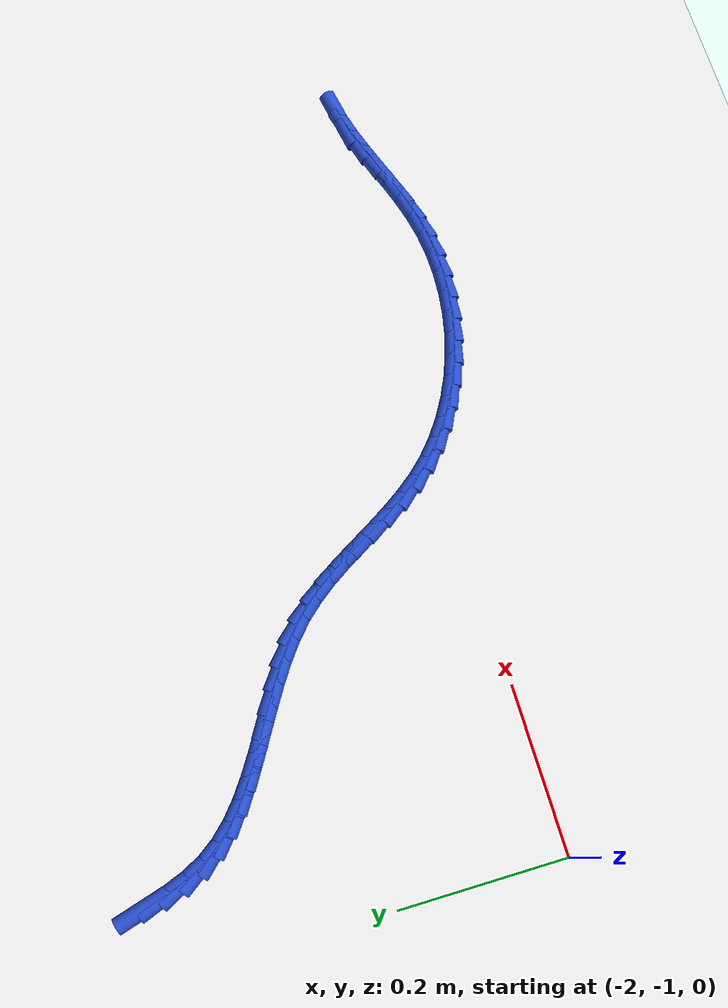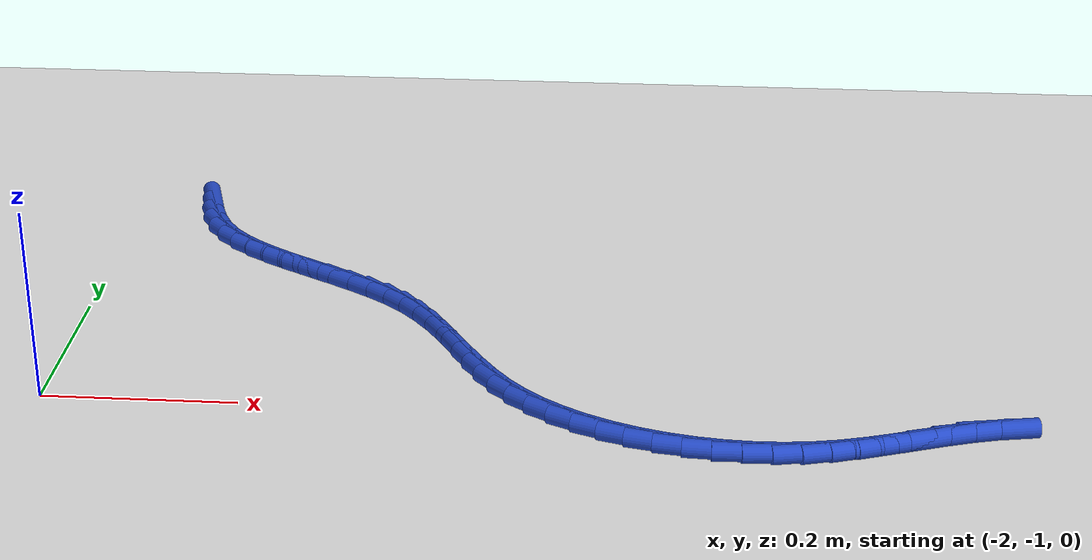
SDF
<sdf version="1.6">
 <world name="default">
  <model name="ground_plane">
   <static>1</static>
   <link name="link">
    <collision name="collision">
     <geometry><plane><normal>0 0 1</normal><size>100 100</size></plane></geometry>
     <surface><friction><ode><mu>100</mu><mu2>50</mu2></ode></friction></surface>
    </collision>
    <visual name="visual">
     <cast_shadows>0</cast_shadows>
     <geometry><plane><normal>0 0 1</normal><size>100 100</size></plane></geometry>
     <material>
      <script><uri>file://media/materials/scripts/gazebo.material</uri><name>Gazebo/WhiteGlow</name></script>
     </material>
    </visual>
   </link>
  </model>
  <model name="line">
   <link name="link_146">
    <pose>-1.916524852934503 -0.5394913245803629 0.01 0 1.57 -1.2942895132993408</pose>
    <collision name="collision">
     <geometry><cylinder><radius>0.01</radius><length>0.08</length></cylinder></geometry>
    </collision>
    <visual name="visual">
     <material>
      <script><name>Gazebo/Blue</name><uri>file://media/materials/scripts/gazebo.material</uri></script>
     </material>
     <geometry><cylinder><radius>0.01</radius><length>0.08</length></cylinder></geometry>
    </visual>
   </link>
   <link name="link_147">
    <pose>-1.909293522142798 -0.564973848998647 0.01 0 1.57 -1.217813978859951</pose>
    <collision name="collision">
     <geometry><cylinder><radius>0.01</radius><length>0.08</length></cylinder></geometry>
    </collision>
    <visual name="visual">
     <material>
      <script><name>Gazebo/Blue</name><uri>file://media/materials/scripts/gazebo.material</uri></script>
     </material>
     <geometry><cylinder><radius>0.01</radius><length>0.08</length></cylinder></geometry>
    </visual>
   </link>
   <link name="link_148">
    <pose>-1.9003900592793597 -0.5891409900284101 0.01 0 1.57 -1.1029184917757635</pose>
    <collision name="collision">
     <geometry><cylinder><radius>0.01</radius><length>0.08</length></cylinder></geometry>
    </collision>
    <visual name="visual">
     <material>
      <script><name>Gazebo/Blue</name><uri>file://media/materials/scripts/gazebo.material</uri></script>
     </material>
     <geometry><cylinder><radius>0.01</radius><length>0.08</length></cylinder></geometry>
    </visual>
   </link>
   <link name="link_149">
    <pose>-1.8890611035679736 -0.6115612901170854 0.01 0 1.57 -0.9541068541620445</pose>
    <collision name="collision">
     <geometry><cylinder><radius>0.01</radius><length>0.08</length></cylinder></geometry>
    </collision>
    <visual name="visual">
     <material>
      <script><name>Gazebo/Blue</name><uri>file://media/materials/scripts/gazebo.material</uri></script>
     </material>
     <geometry><cylinder><radius>0.01</radius><length>0.08</length></cylinder></geometry>
    </visual>
   </link>
   <link name="link_150">
    <pose>-1.8746618586096495 -0.6318727277922376 0.01 0 1.57 -0.8147331824166854</pose>
    <collision name="collision">
     <geometry><cylinder><radius>0.01</radius><length>0.08</length></cylinder></geometry>
    </collision>
    <visual name="visual">
     <material>
      <script><name>Gazebo/Blue</name><uri>file://media/materials/scripts/gazebo.material</uri></script>
     </material>
     <geometry><cylinder><radius>0.01</radius><length>0.08</length></cylinder></geometry>
    </visual>
   </link>
   <link name="link_151">
    <pose>-1.8573527932600646 -0.6502283166618286 0.01 0 1.57 -0.70574313979676</pose>
    <collision name="collision">
     <geometry><cylinder><radius>0.01</radius><length>0.08</length></cylinder></geometry>
    </collision>
    <visual name="visual">
     <material>
      <script><name>Gazebo/Blue</name><uri>file://media/materials/scripts/gazebo.material</uri></script>
     </material>
     <geometry><cylinder><radius>0.01</radius><length>0.08</length></cylinder></geometry>
    </visual>
   </link>
   <link name="link_152">
    <pose>-1.837656439174529 -0.6670126400458308 0.01 0 1.57 -0.6263406899594469</pose>
    <collision name="collision">
     <geometry><cylinder><radius>0.01</radius><length>0.08</length></cylinder></geometry>
    </collision>
    <visual name="visual">
     <material>
      <script><name>Gazebo/Blue</name><uri>file://media/materials/scripts/gazebo.material</uri></script>
     </material>
     <geometry><cylinder><radius>0.01</radius><length>0.08</length></cylinder></geometry>
    </visual>
   </link>
   <link name="link_153">
    <pose>-1.816097060436525 -0.6826113892982199 0.01 0 1.57 -0.5737635765131239</pose>
    <collision name="collision">
     <geometry><cylinder><radius>0.01</radius><length>0.08</length></cylinder></geometry>
    </collision>
    <visual name="visual">
     <material>
      <script><name>Gazebo/Blue</name><uri>file://media/materials/scripts/gazebo.material</uri></script>
     </material>
     <geometry><cylinder><radius>0.01</radius><length>0.08</length></cylinder></geometry>
    </visual>
   </link>
   <link name="link_154">
    <pose>-1.7931989211295336 -0.6974102557729703 0.01 0 1.57 -0.5452765079445525</pose>
    <collision name="collision">
     <geometry><cylinder><radius>0.01</radius><length>0.08</length></cylinder></geometry>
    </collision>
    <visual name="visual">
     <material>
      <script><name>Gazebo/Blue</name><uri>file://media/materials/scripts/gazebo.material</uri></script>
     </material>
     <geometry><cylinder><radius>0.01</radius><length>0.08</length></cylinder></geometry>
    </visual>
   </link>
   <link name="link_155">
    <pose>-1.7694862853370366 -0.7117949308240576 0.01 0 1.57 -0.539023096502067</pose>
    <collision name="collision">
     <geometry><cylinder><radius>0.01</radius><length>0.08</length></cylinder></geometry>
    </collision>
    <visual name="visual">
     <material>
      <script><name>Gazebo/Blue</name><uri>file://media/materials/scripts/gazebo.material</uri></script>
     </material>
     <geometry><cylinder><radius>0.01</radius><length>0.08</length></cylinder></geometry>
    </visual>
   </link>
   <link name="link_156">
    <pose>-1.7454834171425162 -0.7261511058054565 0.01 0 1.57 -0.5542869534823142</pose>
    <collision name="collision">
     <geometry><cylinder><radius>0.01</radius><length>0.08</length></cylinder></geometry>
    </collision>
    <visual name="visual">
     <material>
      <script><name>Gazebo/Blue</name><uri>file://media/materials/scripts/gazebo.material</uri></script>
     </material>
     <geometry><cylinder><radius>0.01</radius><length>0.08</length></cylinder></geometry>
    </visual>
   </link>
   <link name="link_157">
    <pose>-1.7217145806294536 -0.740864472071142 0.01 0 1.57 -0.5914811855102141</pose>
    <collision name="collision">
     <geometry><cylinder><radius>0.01</radius><length>0.08</length></cylinder></geometry>
    </collision>
    <visual name="visual">
     <material>
      <script><name>Gazebo/Blue</name><uri>file://media/materials/scripts/gazebo.material</uri></script>
     </material>
     <geometry><cylinder><radius>0.01</radius><length>0.08</length></cylinder></geometry>
    </visual>
   </link>
   <link name="link_158">
    <pose>-1.6987040398813313 -0.7563207209750898 0.01 0 1.57 -0.65195469672039</pose>
    <collision name="collision">
     <geometry><cylinder><radius>0.01</radius><length>0.08</length></cylinder></geometry>
    </collision>
    <visual name="visual">
     <material>
      <script><name>Gazebo/Blue</name><uri>file://media/materials/scripts/gazebo.material</uri></script>
     </material>
     <geometry><cylinder><radius>0.01</radius><length>0.08</length></cylinder></geometry>
    </visual>
   </link>
   <link name="link_159">
    <pose>-1.6769760589816305 -0.7729055438712744 0.01 0 1.57 -0.7375111565139055</pose>
    <collision name="collision">
     <geometry><cylinder><radius>0.01</radius><length>0.08</length></cylinder></geometry>
    </collision>
    <visual name="visual">
     <material>
      <script><name>Gazebo/Blue</name><uri>file://media/materials/scripts/gazebo.material</uri></script>
     </material>
     <geometry><cylinder><radius>0.01</radius><length>0.08</length></cylinder></geometry>
    </visual>
   </link>
   <link name="link_160">
    <pose>-1.6570549020138334 -0.7910046321136709 0.01 0 1.57 -0.8414398415832776</pose>
    <collision name="collision">
     <geometry><cylinder><radius>0.01</radius><length>0.08</length></cylinder></geometry>
    </collision>
    <visual name="visual">
     <material>
      <script><name>Gazebo/Blue</name><uri>file://media/materials/scripts/gazebo.material</uri></script>
     </material>
     <geometry><cylinder><radius>0.01</radius><length>0.08</length></cylinder></geometry>
    </visual>
   </link>
   <link name="link_161">
    <pose>-1.6392966584090616 -0.8108737887288884 0.01 0 1.57 -0.929336820223411</pose>
    <collision name="collision">
     <geometry><cylinder><radius>0.01</radius><length>0.08</length></cylinder></geometry>
    </collision>
    <visual name="visual">
     <material>
      <script><name>Gazebo/Blue</name><uri>file://media/materials/scripts/gazebo.material</uri></script>
     </material>
     <geometry><cylinder><radius>0.01</radius><length>0.08</length></cylinder></geometry>
    </visual>
   </link>
   <link name="link_162">
    <pose>-1.6233520052375383 -0.8322239972337291 0.01 0 1.57 -0.9911112862122267</pose>
    <collision name="collision">
     <geometry><cylinder><radius>0.01</radius><length>0.08</length></cylinder></geometry>
    </collision>
    <visual name="visual">
     <material>
      <script><name>Gazebo/Blue</name><uri>file://media/materials/scripts/gazebo.material</uri></script>
     </material>
     <geometry><cylinder><radius>0.01</radius><length>0.08</length></cylinder></geometry>
    </visual>
   </link>
   <link name="link_163">
    <pose>-1.6086866942073454 -0.854623415542926 0.01 0 1.57 -1.0268655118925762</pose>
    <collision name="collision">
     <geometry><cylinder><radius>0.01</radius><length>0.08</length></cylinder></geometry>
    </collision>
    <visual name="visual">
     <material>
      <script><name>Gazebo/Blue</name><uri>file://media/materials/scripts/gazebo.material</uri></script>
     </material>
     <geometry><cylinder><radius>0.01</radius><length>0.08</length></cylinder></geometry>
    </visual>
   </link>
   <link name="link_164">
    <pose>-1.5947664763272638 -0.8776402010311121 0.01 0 1.57 -1.037122706989294</pose>
    <collision name="collision">
     <geometry><cylinder><radius>0.01</radius><length>0.08</length></cylinder></geometry>
    </collision>
    <visual name="visual">
     <material>
      <script><name>Gazebo/Blue</name><uri>file://media/materials/scripts/gazebo.material</uri></script>
     </material>
     <geometry><cylinder><radius>0.01</radius><length>0.08</length></cylinder></geometry>
    </visual>
   </link>
   <link name="link_165">
    <pose>-1.5810571026060736 -0.9008425110729203 0.01 0 1.57 -1.022116363358773</pose>
    <collision name="collision">
     <geometry><cylinder><radius>0.01</radius><length>0.08</length></cylinder></geometry>
    </collision>
    <visual name="visual">
     <material>
      <script><name>Gazebo/Blue</name><uri>file://media/materials/scripts/gazebo.material</uri></script>
     </material>
     <geometry><cylinder><radius>0.01</radius><length>0.08</length></cylinder></geometry>
    </visual>
   </link>
   <link name="link_166">
    <pose>-1.5670243240525534 -0.9237985030429833 0.01 0 1.57 -0.9815968563240952</pose>
    <collision name="collision">
     <geometry><cylinder><radius>0.01</radius><length>0.08</length></cylinder></geometry>
    </collision>
    <visual name="visual">
     <material>
      <script><name>Gazebo/Blue</name><uri>file://media/materials/scripts/gazebo.material</uri></script>
     </material>
     <geometry><cylinder><radius>0.01</radius><length>0.08</length></cylinder></geometry>
    </visual>
   </link>
   <link name="link_167">
    <pose>-1.5521338916754859 -0.9460763343159343 0.01 0 1.57 -0.9151187871248896</pose>
    <collision name="collision">
     <geometry><cylinder><radius>0.01</radius><length>0.08</length></cylinder></geometry>
    </collision>
    <visual name="visual">
     <material>
      <script><name>Gazebo/Blue</name><uri>file://media/materials/scripts/gazebo.material</uri></script>
     </material>
     <geometry><cylinder><radius>0.01</radius><length>0.08</length></cylinder></geometry>
    </visual>
   </link>
   <link name="link_168">
    <pose>-1.5358515564836497 -0.9672441622664062 0.01 0 1.57 -0.8234242671667209</pose>
    <collision name="collision">
     <geometry><cylinder><radius>0.01</radius><length>0.08</length></cylinder></geometry>
    </collision>
    <visual name="visual">
     <material>
      <script><name>Gazebo/Blue</name><uri>file://media/materials/scripts/gazebo.material</uri></script>
     </material>
     <geometry><cylinder><radius>0.01</radius><length>0.08</length></cylinder></geometry>
    </visual>
   </link>
   <link name="link_169">
    <pose>-1.5176576214234734 -0.9868772035635008 0.01 0 1.57 -0.7222361737048636</pose>
    <collision name="collision">
     <geometry><cylinder><radius>0.01</radius><length>0.08</length></cylinder></geometry>
    </collision>
    <visual name="visual">
     <material>
      <script><name>Gazebo/Blue</name><uri>file://media/materials/scripts/gazebo.material</uri></script>
     </material>
     <geometry><cylinder><radius>0.01</radius><length>0.08</length></cylinder></geometry>
    </visual>
   </link>
   <link name="link_170">
    <pose>-1.497396933188713 -1.0047275187937053 0.01 0 1.57 -0.6267729152299641</pose>
    <collision name="collision">
     <geometry><cylinder><radius>0.01</radius><length>0.08</length></cylinder></geometry>
    </collision>
    <visual name="visual">
     <material>
      <script><name>Gazebo/Blue</name><uri>file://media/materials/scripts/gazebo.material</uri></script>
     </material>
     <geometry><cylinder><radius>0.01</radius><length>0.08</length></cylinder></geometry>
    </visual>
   </link>
   <link name="link_171">
    <pose>-1.4752962791325877 -1.020732451881716 0.01 0 1.57 -0.5369419354318908</pose>
    <collision name="collision">
     <geometry><cylinder><radius>0.01</radius><length>0.08</length></cylinder></geometry>
    </collision>
    <visual name="visual">
     <material>
      <script><name>Gazebo/Blue</name><uri>file://media/materials/scripts/gazebo.material</uri></script>
     </material>
     <geometry><cylinder><radius>0.01</radius><length>0.08</length></cylinder></geometry>
    </visual>
   </link>
   <link name="link_172">
    <pose>-1.451600480299029 -1.0348380950808842 0.01 0 1.57 -0.45173982382793554</pose>
    <collision name="collision">
     <geometry><cylinder><radius>0.01</radius><length>0.08</length></cylinder></geometry>
    </collision>
    <visual name="visual">
     <material>
      <script><name>Gazebo/Blue</name><uri>file://media/materials/scripts/gazebo.material</uri></script>
     </material>
     <geometry><cylinder><radius>0.01</radius><length>0.08</length></cylinder></geometry>
    </visual>
   </link>
   <link name="link_173">
    <pose>-1.426554357731972 -1.0469905406445617 0.01 0 1.57 -0.37006940382263853</pose>
    <collision name="collision">
     <geometry><cylinder><radius>0.01</radius><length>0.08</length></cylinder></geometry>
    </collision>
    <visual name="visual">
     <material>
      <script><name>Gazebo/Blue</name><uri>file://media/materials/scripts/gazebo.material</uri></script>
     </material>
     <geometry><cylinder><radius>0.01</radius><length>0.08</length></cylinder></geometry>
    </visual>
   </link>
   <link name="link_174">
    <pose>-1.4004027324753474 -1.0571358808260995 0.01 0 1.57 -0.290798961915635</pose>
    <collision name="collision">
     <geometry><cylinder><radius>0.01</radius><length>0.08</length></cylinder></geometry>
    </collision>
    <visual name="visual">
     <material>
      <script><name>Gazebo/Blue</name><uri>file://media/materials/scripts/gazebo.material</uri></script>
     </material>
     <geometry><cylinder><radius>0.01</radius><length>0.08</length></cylinder></geometry>
    </visual>
   </link>
   <link name="link_175">
    <pose>-1.3733904255730884 -1.0652202078788489 0.01 0 1.57 -0.2127913291632288</pose>
    <collision name="collision">
     <geometry><cylinder><radius>0.01</radius><length>0.08</length></cylinder></geometry>
    </collision>
    <visual name="visual">
     <material>
      <script><name>Gazebo/Blue</name><uri>file://media/materials/scripts/gazebo.material</uri></script>
     </material>
     <geometry><cylinder><radius>0.01</radius><length>0.08</length></cylinder></geometry>
    </visual>
   </link>
   <link name="link_176">
    <pose>-1.3457622580691293 -1.0711896140561616 0.01 0 1.57 -0.1349141906167187</pose>
    <collision name="collision">
     <geometry><cylinder><radius>0.01</radius><length>0.08</length></cylinder></geometry>
    </collision>
    <visual name="visual">
     <material>
      <script><name>Gazebo/Blue</name><uri>file://media/materials/scripts/gazebo.material</uri></script>
     </material>
     <geometry><cylinder><radius>0.01</radius><length>0.08</length></cylinder></geometry>
    </visual>
   </link>
   <link name="link_177">
    <pose>-1.3177630510073997 -1.0749901916113882 0.01 0 1.57 -0.056041428600566996</pose>
    <collision name="collision">
     <geometry><cylinder><radius>0.01</radius><length>0.08</length></cylinder></geometry>
    </collision>
    <visual name="visual">
     <material>
      <script><name>Gazebo/Blue</name><uri>file://media/materials/scripts/gazebo.material</uri></script>
     </material>
     <geometry><cylinder><radius>0.01</radius><length>0.08</length></cylinder></geometry>
    </visual>
   </link>
   <link name="link_178">
    <pose>-1.2896376254318347 -1.0765680327978808 0.01 0 1.57 0.024945991415800547</pose>
    <collision name="collision">
     <geometry><cylinder><radius>0.01</radius><length>0.08</length></cylinder></geometry>
    </collision>
    <visual name="visual">
     <material>
      <script><name>Gazebo/Blue</name><uri>file://media/materials/scripts/gazebo.material</uri></script>
     </material>
     <geometry><cylinder><radius>0.01</radius><length>0.08</length></cylinder></geometry>
    </visual>
   </link>
   <link name="link_179">
    <pose>-1.2616308023863658 -1.0758692298689903 0.01 0 1.57 0.10915135928147915</pose>
    <collision name="collision">
     <geometry><cylinder><radius>0.01</radius><length>0.08</length></cylinder></geometry>
    </collision>
    <visual name="visual">
     <material>
      <script><name>Gazebo/Blue</name><uri>file://media/materials/scripts/gazebo.material</uri></script>
     </material>
     <geometry><cylinder><radius>0.01</radius><length>0.08</length></cylinder></geometry>
    </visual>
   </link>
   <link name="link_180">
    <pose>-1.2339874029149263 -1.0728398750780679 0.01 0 1.57 0.19671816343448958</pose>
    <collision name="collision">
     <geometry><cylinder><radius>0.01</radius><length>0.08</length></cylinder></geometry>
    </collision>
    <visual name="visual">
     <material>
      <script><name>Gazebo/Blue</name><uri>file://media/materials/scripts/gazebo.material</uri></script>
     </material>
     <geometry><cylinder><radius>0.01</radius><length>0.08</length></cylinder></geometry>
    </visual>
   </link>
   <link name="link_181">
    <pose>-1.2069404947366564 -1.0674495452020025 0.01 0 1.57 0.2726220086530017</pose>
    <collision name="collision">
     <geometry><cylinder><radius>0.01</radius><length>0.08</length></cylinder></geometry>
    </collision>
    <visual name="visual">
     <material>
      <script><name>Gazebo/Blue</name><uri>file://media/materials/scripts/gazebo.material</uri></script>
     </material>
     <geometry><cylinder><radius>0.01</radius><length>0.08</length></cylinder></geometry>
    </visual>
   </link>
   <link name="link_182">
    <pose>-1.1805247866708906 -1.0600641613997146 0.01 0 1.57 0.32335964792648386</pose>
    <collision name="collision">
     <geometry><cylinder><radius>0.01</radius><length>0.08</length></cylinder></geometry>
    </collision>
    <visual name="visual">
     <material>
      <script><name>Gazebo/Blue</name><uri>file://media/materials/scripts/gazebo.material</uri></script>
     </material>
     <geometry><cylinder><radius>0.01</radius><length>0.08</length></cylinder></geometry>
    </visual>
   </link>
   <link name="link_183">
    <pose>-1.1546099004004997 -1.0513795083207245 0.01 0 1.57 0.34833444125993085</pose>
    <collision name="collision">
     <geometry><cylinder><radius>0.01</radius><length>0.08</length></cylinder></geometry>
    </collision>
    <visual name="visual">
     <material>
      <script><name>Gazebo/Blue</name><uri>file://media/materials/scripts/gazebo.material</uri></script>
     </material>
     <geometry><cylinder><radius>0.01</radius><length>0.08</length></cylinder></geometry>
    </visual>
   </link>
   <link name="link_184">
    <pose>-1.1290604290352793 -1.0421014182942399 0.01 0 1.57 0.34732669714042264</pose>
    <collision name="collision">
     <geometry><cylinder><radius>0.01</radius><length>0.08</length></cylinder></geometry>
    </collision>
    <visual name="visual">
     <material>
      <script><name>Gazebo/Blue</name><uri>file://media/materials/scripts/gazebo.material</uri></script>
     </material>
     <geometry><cylinder><radius>0.01</radius><length>0.08</length></cylinder></geometry>
    </visual>
   </link>
   <link name="link_185">
    <pose>-1.1037409656850246 -1.03293572364947 0.01 0 1.57 0.3195789681369204</pose>
    <collision name="collision">
     <geometry><cylinder><radius>0.01</radius><length>0.08</length></cylinder></geometry>
    </collision>
    <visual name="visual">
     <material>
      <script><name>Gazebo/Blue</name><uri>file://media/materials/scripts/gazebo.material</uri></script>
     </material>
     <geometry><cylinder><radius>0.01</radius><length>0.08</length></cylinder></geometry>
    </visual>
   </link>
   <link name="link_186">
    <pose>-1.0785161034595312 -1.0245882567156224 0.01 0 1.57 0.2637736810357044</pose>
    <collision name="collision">
     <geometry><cylinder><radius>0.01</radius><length>0.08</length></cylinder></geometry>
    </collision>
    <visual name="visual">
     <material>
      <script><name>Gazebo/Blue</name><uri>file://media/materials/scripts/gazebo.material</uri></script>
     </material>
     <geometry><cylinder><radius>0.01</radius><length>0.08</length></cylinder></geometry>
    </visual>
   </link>
   <link name="link_187">
    <pose>-1.0532504354685936 -1.0177648498219056 0.01 0 1.57 0.17862497824910217</pose>
    <collision name="collision">
     <geometry><cylinder><radius>0.01</radius><length>0.08</length></cylinder></geometry>
    </collision>
    <visual name="visual">
     <material>
      <script><name>Gazebo/Blue</name><uri>file://media/materials/scripts/gazebo.material</uri></script>
     </material>
     <geometry><cylinder><radius>0.01</radius><length>0.08</length></cylinder></geometry>
    </visual>
   </link>
  </model>
 </world>
</sdf>
